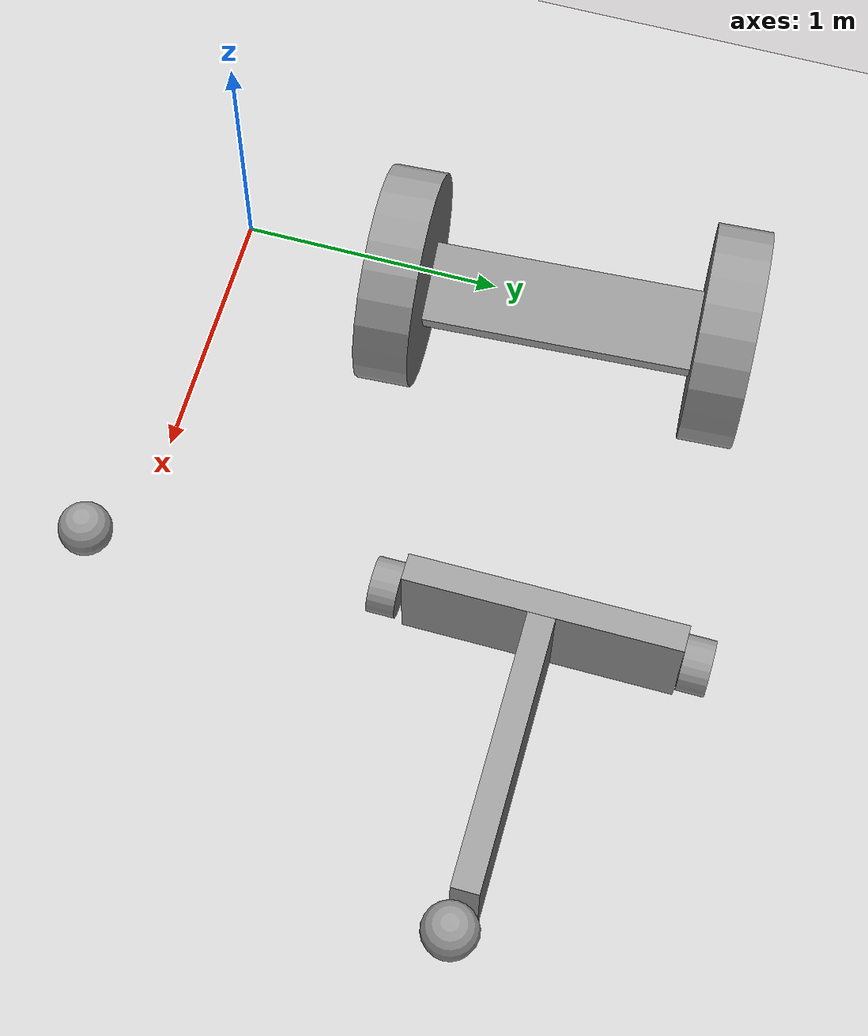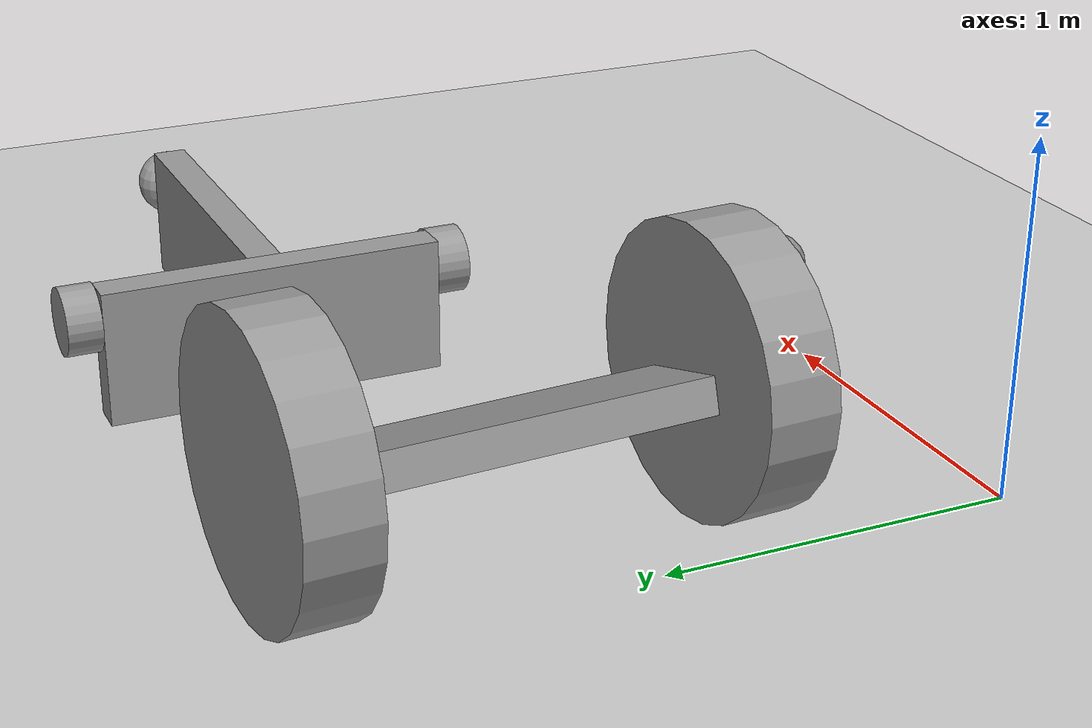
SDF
<sdf version="1.6">
 <world name="default">
  <model name="ground_plane">
   <static>1</static>
   <link name="link">
    <collision name="collision">
     <geometry><plane><normal>0 0 1</normal><size>100 100</size></plane></geometry>
     <surface>
      <contact><collide_bitmask>65535</collide_bitmask></contact>
      <friction><ode><mu>100</mu><mu2>50</mu2></ode></friction>
     </surface>
    </collision>
    <visual name="visual">
     <cast_shadows>0</cast_shadows>
     <geometry><plane><normal>0 0 1</normal><size>100 100</size></plane></geometry>
     <material>
      <script><uri>file://media/materials/scripts/gazebo.material</uri><name>Gazebo/Grey</name></script>
     </material>
    </visual>
   </link>
  </model>
  <model name="normal_follower">
   <link name="link">
    <inertial>
     <mass>1</mass>
     <inertia>
      <ixx>0.166667</ixx>
      <ixy>0</ixy>
      <ixz>0</ixz>
      <iyy>0.166667</iyy>
      <iyz>0</iyz>
      <izz>0.166667</izz>
     </inertia>
    </inertial>
    <visual name="visual">
     <geometry><box><size>0.1 1 0.3</size></box></geometry>
     <material>
      <script><name>Gazebo/Grey</name><uri>file://media/materials/scripts/gazebo.material</uri></script>
      <shader type="pixel"><normal_map>__default__</normal_map></shader>
      <ambient>0.3 0.3 0.3 1</ambient>
      <diffuse>0.7 0.7 0.7 1</diffuse>
      <specular>0.01 0.01 0.01 1</specular>
      <emissive>0 0 0 1</emissive>
     </material>
    </visual>
    <collision name="collision">
     <geometry><box><size>0.1 1 0.3</size></box></geometry>
     <surface>
      <friction>
       <ode><mu>1</mu><mu2>1</mu2><fdir1>0 0 0</fdir1><slip1>0</slip1><slip2>0</slip2></ode>
       <torsional>
        <coefficient>1</coefficient>
        <patch_radius>0</patch_radius>
        <surface_radius>0</surface_radius>
        <use_patch_radius>1</use_patch_radius>
        <ode><slip>0</slip></ode>
       </torsional>
      </friction>
      <bounce><restitution_coefficient>0</restitution_coefficient><threshold>1e+06</threshold></bounce>
      <contact>
       <collide_without_contact>0</collide_without_contact>
       <collide_without_contact_bitmask>1</collide_without_contact_bitmask>
       <collide_bitmask>1</collide_bitmask>
       <ode>
        <soft_cfm>0</soft_cfm>
        <soft_erp>0.2</soft_erp>
        <kp>1e+13</kp>
        <kd>1</kd>
        <max_vel>0.01</max_vel>
        <min_depth>0</min_depth>
       </ode>
       <bullet>
        <split_impulse>1</split_impulse>
        <split_impulse_penetration_threshold>-0.01</split_impulse_penetration_threshold>
        <soft_cfm>0</soft_cfm>
        <soft_erp>0.2</soft_erp>
        <kp>1e+13</kp>
        <kd>1</kd>
       </bullet>
      </contact>
     </surface>
    </collision>
   </link>
   <link name="link_0">
    <pose>0.045 0.6 0 1.5708 -0 3.14159</pose>
    <inertial>
     <mass>1</mass>
     <inertia><ixx>0.145833</ixx><ixy>0</ixy><ixz>0</ixz><iyy>0.145833</iyy><iyz>0</iyz><izz>0.125</izz></inertia>
    </inertial>
    <visual name="visual">
     <geometry><cylinder><radius>0.4</radius><length>0.2</length></cylinder></geometry>
     <material>
      <lighting>1</lighting>
      <script><uri>file://media/materials/scripts/gazebo.material</uri><name>Gazebo/Grey</name></script>
      <shader type="pixel"><normal_map>__default__</normal_map></shader>
      <ambient>0.3 0.3 0.3 1</ambient>
      <diffuse>0.7 0.7 0.7 1</diffuse>
      <specular>0.01 0.01 0.01 1</specular>
      <emissive>0 0 0 1</emissive>
     </material>
    </visual>
    <collision name="collision">
     <geometry><cylinder><radius>0.4</radius><length>0.2</length></cylinder></geometry>
     <surface>
      <friction>
       <ode><mu>1</mu><mu2>1</mu2><fdir1>0 0 0</fdir1><slip1>0</slip1><slip2>0</slip2></ode>
       <torsional>
        <coefficient>1</coefficient>
        <patch_radius>0</patch_radius>
        <surface_radius>0</surface_radius>
        <use_patch_radius>1</use_patch_radius>
        <ode><slip>0</slip></ode>
       </torsional>
      </friction>
      <bounce><restitution_coefficient>0</restitution_coefficient><threshold>1e+06</threshold></bounce>
      <contact>
       <collide_without_contact>0</collide_without_contact>
       <collide_without_contact_bitmask>1</collide_without_contact_bitmask>
       <collide_bitmask>1</collide_bitmask>
       <ode>
        <soft_cfm>0</soft_cfm>
        <soft_erp>0.2</soft_erp>
        <kp>1e+13</kp>
        <kd>1</kd>
        <max_vel>0.01</max_vel>
        <min_depth>0</min_depth>
       </ode>
       <bullet>
        <split_impulse>1</split_impulse>
        <split_impulse_penetration_threshold>-0.01</split_impulse_penetration_threshold>
        <soft_cfm>0</soft_cfm>
        <soft_erp>0.2</soft_erp>
        <kp>1e+13</kp>
        <kd>1</kd>
       </bullet>
      </contact>
     </surface>
    </collision>
   </link>
   <link name="link_0_clone">
    <pose>0.045 -0.6 0 1.5708 -0 -3.14159</pose>
    <inertial>
     <mass>1</mass>
     <inertia><ixx>0.145833</ixx><ixy>0</ixy><ixz>0</ixz><iyy>0.145833</iyy><iyz>0</iyz><izz>0.125</izz></inertia>
    </inertial>
    <visual name="visual">
     <geometry><cylinder><radius>0.4</radius><length>0.2</length></cylinder></geometry>
     <material>
      <lighting>1</lighting>
      <script><uri>file://media/materials/scripts/gazebo.material</uri><name>Gazebo/Grey</name></script>
      <shader type="pixel"><normal_map>__default__</normal_map></shader>
      <ambient>0.3 0.3 0.3 1</ambient>
      <diffuse>0.7 0.7 0.7 1</diffuse>
      <specular>0.01 0.01 0.01 1</specular>
      <emissive>0 0 0 1</emissive>
     </material>
    </visual>
    <collision name="collision">
     <geometry><cylinder><radius>0.4</radius><length>0.2</length></cylinder></geometry>
     <surface>
      <friction>
       <ode><mu>1</mu><mu2>1</mu2><fdir1>0 0 0</fdir1><slip1>0</slip1><slip2>0</slip2></ode>
       <torsional>
        <coefficient>1</coefficient>
        <patch_radius>0</patch_radius>
        <surface_radius>0</surface_radius>
        <use_patch_radius>1</use_patch_radius>
        <ode><slip>0</slip></ode>
       </torsional>
      </friction>
      <bounce><restitution_coefficient>0</restitution_coefficient><threshold>1e+06</threshold></bounce>
      <contact>
       <collide_without_contact>0</collide_without_contact>
       <collide_without_contact_bitmask>1</collide_without_contact_bitmask>
       <collide_bitmask>1</collide_bitmask>
       <ode>
        <soft_cfm>0</soft_cfm>
        <soft_erp>0.2</soft_erp>
        <kp>1e+13</kp>
        <kd>1</kd>
        <max_vel>0.01</max_vel>
        <min_depth>0</min_depth>
       </ode>
       <bullet>
        <split_impulse>1</split_impulse>
        <split_impulse_penetration_threshold>-0.01</split_impulse_penetration_threshold>
        <soft_cfm>0</soft_cfm>
        <soft_erp>0.2</soft_erp>
        <kp>1e+13</kp>
        <kd>1</kd>
       </bullet>
      </contact>
     </surface>
    </collision>
   </link>
   <joint name="link_JOINT_0" type="revolute">
    <parent>link</parent>
    <child>link_0</child>
    <axis>
     <xyz>0 0 1</xyz>
     <use_parent_model_frame>0</use_parent_model_frame>
     <limit>
      <lower>-1.79769e+308</lower>
      <upper>1.79769e+308</upper>
      <effort>-1</effort>
      <velocity>-1</velocity>
     </limit>
     <dynamics>
      <spring_reference>0</spring_reference>
      <spring_stiffness>0</spring_stiffness>
      <damping>0</damping>
      <friction>0</friction>
     </dynamics>
    </axis>
    <physics>
     <ode><limit><cfm>0</cfm><erp>0.2</erp></limit><suspension><cfm>0</cfm><erp>0.2</erp></suspension></ode>
    </physics>
   </joint>
   <joint name="link_JOINT_1" type="revolute">
    <parent>link</parent>
    <child>link_0_clone</child>
    <axis>
     <xyz>0 0 1</xyz>
     <use_parent_model_frame>0</use_parent_model_frame>
     <limit>
      <lower>-1.79769e+308</lower>
      <upper>1.79769e+308</upper>
      <effort>-1</effort>
      <velocity>-1</velocity>
     </limit>
     <dynamics>
      <spring_reference>0</spring_reference>
      <spring_stiffness>0</spring_stiffness>
      <damping>0</damping>
      <friction>0</friction>
     </dynamics>
    </axis>
    <physics>
     <ode><limit><cfm>0</cfm><erp>0.2</erp></limit><suspension><cfm>0</cfm><erp>0.2</erp></suspension></ode>
    </physics>
   </joint>
   <static>0</static>
   <pose>0.241444 1.3104 0.356984 3.14158 -1.27264 0.057705</pose>
  </model>
  <model name="weird_follower">
   <link name="link">
    <inertial>
     <mass>1</mass>
     <inertia>
      <ixx>0.166667</ixx>
      <ixy>0</ixy>
      <ixz>0</ixz>
      <iyy>0.166667</iyy>
      <iyz>0</iyz>
      <izz>0.166667</izz>
     </inertia>
    </inertial>
    <visual name="visual">
     <geometry><box><size>0.1 1 0.4</size></box></geometry>
     <material>
      <script><name>Gazebo/Grey</name><uri>file://media/materials/scripts/gazebo.material</uri></script>
      <shader type="pixel"><normal_map>__default__</normal_map></shader>
      <ambient>0.3 0.3 0.3 1</ambient>
      <diffuse>0.7 0.7 0.7 1</diffuse>
      <specular>0.01 0.01 0.01 1</specular>
      <emissive>0 0 0 1</emissive>
     </material>
    </visual>
    <collision name="collision">
     <geometry><box><size>0.1 1 0.4</size></box></geometry>
     <surface>
      <friction>
       <ode><mu>1</mu><mu2>1</mu2><fdir1>0 0 0</fdir1><slip1>0</slip1><slip2>0</slip2></ode>
       <torsional>
        <coefficient>1</coefficient>
        <patch_radius>0</patch_radius>
        <surface_radius>0</surface_radius>
        <use_patch_radius>1</use_patch_radius>
        <ode><slip>0</slip></ode>
       </torsional>
      </friction>
      <bounce><restitution_coefficient>0</restitution_coefficient><threshold>1e+06</threshold></bounce>
      <contact>
       <collide_without_contact>0</collide_without_contact>
       <collide_without_contact_bitmask>1</collide_without_contact_bitmask>
       <collide_bitmask>1</collide_bitmask>
       <ode>
        <soft_cfm>0</soft_cfm>
        <soft_erp>0.2</soft_erp>
        <kp>1e+13</kp>
        <kd>1</kd>
        <max_vel>0.01</max_vel>
        <min_depth>0</min_depth>
       </ode>
       <bullet>
        <split_impulse>1</split_impulse>
        <split_impulse_penetration_threshold>-0.01</split_impulse_penetration_threshold>
        <soft_cfm>0</soft_cfm>
        <soft_erp>0.2</soft_erp>
        <kp>1e+13</kp>
        <kd>1</kd>
       </bullet>
      </contact>
     </surface>
    </collision>
   </link>
   <link name="link_0">
    <pose>0.045 0.55001 0.099995 1.5707 -0 0</pose>
    <inertial>
     <mass>1</mass>
     <inertia><ixx>0.145833</ixx><ixy>0</ixy><ixz>0</ixz><iyy>0.145833</iyy><iyz>0</iyz><izz>0.125</izz></inertia>
    </inertial>
    <visual name="visual">
     <geometry><cylinder><radius>0.1</radius><length>0.1</length></cylinder></geometry>
     <material>
      <lighting>1</lighting>
      <script><uri>file://media/materials/scripts/gazebo.material</uri><name>Gazebo/Grey</name></script>
      <shader type="pixel"><normal_map>__default__</normal_map></shader>
      <ambient>0.3 0.3 0.3 1</ambient>
      <diffuse>0.7 0.7 0.7 1</diffuse>
      <specular>0.01 0.01 0.01 1</specular>
      <emissive>0 0 0 1</emissive>
     </material>
    </visual>
    <collision name="collision">
     <geometry><cylinder><radius>0.1</radius><length>0.1</length></cylinder></geometry>
     <surface>
      <friction>
       <ode><mu>1</mu><mu2>1</mu2><fdir1>0 0 0</fdir1><slip1>0</slip1><slip2>0</slip2></ode>
       <torsional>
        <coefficient>1</coefficient>
        <patch_radius>0</patch_radius>
        <surface_radius>0</surface_radius>
        <use_patch_radius>1</use_patch_radius>
        <ode><slip>0</slip></ode>
       </torsional>
      </friction>
      <bounce><restitution_coefficient>0</restitution_coefficient><threshold>1e+06</threshold></bounce>
      <contact>
       <collide_without_contact>0</collide_without_contact>
       <collide_without_contact_bitmask>1</collide_without_contact_bitmask>
       <collide_bitmask>1</collide_bitmask>
       <ode>
        <soft_cfm>0</soft_cfm>
        <soft_erp>0.2</soft_erp>
        <kp>1e+13</kp>
        <kd>1</kd>
        <max_vel>0.01</max_vel>
        <min_depth>0</min_depth>
       </ode>
       <bullet>
        <split_impulse>1</split_impulse>
        <split_impulse_penetration_threshold>-0.01</split_impulse_penetration_threshold>
        <soft_cfm>0</soft_cfm>
        <soft_erp>0.2</soft_erp>
        <kp>1e+13</kp>
        <kd>1</kd>
       </bullet>
      </contact>
     </surface>
    </collision>
   </link>
   <link name="link_0_clone">
    <pose>0.05 -0.55001 0.099995 1.5707 -0 0</pose>
    <inertial>
     <mass>1</mass>
     <inertia><ixx>0.145833</ixx><ixy>0</ixy><ixz>0</ixz><iyy>0.145833</iyy><iyz>0</iyz><izz>0.125</izz></inertia>
    </inertial>
    <visual name="visual">
     <geometry><cylinder><radius>0.1</radius><length>0.1</length></cylinder></geometry>
     <material>
      <lighting>1</lighting>
      <script><uri>file://media/materials/scripts/gazebo.material</uri><name>Gazebo/Grey</name></script>
      <shader type="pixel"><normal_map>__default__</normal_map></shader>
      <ambient>0.3 0.3 0.3 1</ambient>
      <diffuse>0.7 0.7 0.7 1</diffuse>
      <specular>0.01 0.01 0.01 1</specular>
      <emissive>0 0 0 1</emissive>
     </material>
    </visual>
    <collision name="collision">
     <geometry><cylinder><radius>0.1</radius><length>0.1</length></cylinder></geometry>
     <surface>
      <friction>
       <ode><mu>1</mu><mu2>1</mu2><fdir1>0 0 0</fdir1><slip1>0</slip1><slip2>0</slip2></ode>
       <torsional>
        <coefficient>1</coefficient>
        <patch_radius>0</patch_radius>
        <surface_radius>0</surface_radius>
        <use_patch_radius>1</use_patch_radius>
        <ode><slip>0</slip></ode>
       </torsional>
      </friction>
      <bounce><restitution_coefficient>0</restitution_coefficient><threshold>1e+06</threshold></bounce>
      <contact>
       <collide_without_contact>0</collide_without_contact>
       <collide_without_contact_bitmask>1</collide_without_contact_bitmask>
       <collide_bitmask>1</collide_bitmask>
       <ode>
        <soft_cfm>0</soft_cfm>
        <soft_erp>0.2</soft_erp>
        <kp>1e+13</kp>
        <kd>1</kd>
        <max_vel>0.01</max_vel>
        <min_depth>0</min_depth>
       </ode>
       <bullet>
        <split_impulse>1</split_impulse>
        <split_impulse_penetration_threshold>-0.01</split_impulse_penetration_threshold>
        <soft_cfm>0</soft_cfm>
        <soft_erp>0.2</soft_erp>
        <kp>1e+13</kp>
        <kd>1</kd>
       </bullet>
      </contact>
     </surface>
    </collision>
   </link>
   <link name="link_1">
    <pose>1.15 -0.02 0.06 0 -0 0</pose>
    <inertial>
     <mass>1</mass>
     <inertia><ixx>0.1</ixx><ixy>0</ixy><ixz>0</ixz><iyy>0.1</iyy><iyz>0</iyz><izz>0.1</izz></inertia>
    </inertial>
    <visual name="visual">
     <geometry><sphere><radius>0.1</radius></sphere></geometry>
     <material>
      <lighting>1</lighting>
      <script><uri>file://media/materials/scripts/gazebo.material</uri><name>Gazebo/Grey</name></script>
      <shader type="pixel"><normal_map>__default__</normal_map></shader>
      <ambient>0.3 0.3 0.3 1</ambient>
      <diffuse>0.7 0.7 0.7 1</diffuse>
      <specular>0.01 0.01 0.01 1</specular>
      <emissive>0 0 0 1</emissive>
     </material>
    </visual>
    <collision name="collision">
     <geometry><sphere><radius>0.1</radius></sphere></geometry>
     <surface>
      <friction>
       <ode><mu>1</mu><mu2>1</mu2><fdir1>0 0 0</fdir1><slip1>0</slip1><slip2>0</slip2></ode>
       <torsional>
        <coefficient>1</coefficient>
        <patch_radius>0</patch_radius>
        <surface_radius>0</surface_radius>
        <use_patch_radius>1</use_patch_radius>
        <ode><slip>0</slip></ode>
       </torsional>
      </friction>
      <bounce><restitution_coefficient>0</restitution_coefficient><threshold>1e+06</threshold></bounce>
      <contact>
       <collide_without_contact>0</collide_without_contact>
       <collide_without_contact_bitmask>1</collide_without_contact_bitmask>
       <collide_bitmask>1</collide_bitmask>
       <ode>
        <soft_cfm>0</soft_cfm>
        <soft_erp>0.2</soft_erp>
        <kp>1e+13</kp>
        <kd>1</kd>
        <max_vel>0.01</max_vel>
        <min_depth>0</min_depth>
       </ode>
       <bullet>
        <split_impulse>1</split_impulse>
        <split_impulse_penetration_threshold>-0.01</split_impulse_penetration_threshold>
        <soft_cfm>0</soft_cfm>
        <soft_erp>0.2</soft_erp>
        <kp>1e+13</kp>
        <kd>1</kd>
       </bullet>
      </contact>
     </surface>
    </collision>
   </link>
   <link name="link_clone">
    <pose>0.55 0 0 0 0 -1.5708</pose>
    <inertial>
     <mass>1</mass>
     <inertia>
      <ixx>0.166667</ixx>
      <ixy>0</ixy>
      <ixz>0</ixz>
      <iyy>0.166667</iyy>
      <iyz>0</iyz>
      <izz>0.166667</izz>
     </inertia>
    </inertial>
    <visual name="visual">
     <geometry><box><size>0.1 1 0.4</size></box></geometry>
     <material>
      <script><name>Gazebo/Grey</name><uri>file://media/materials/scripts/gazebo.material</uri></script>
      <shader type="pixel"><normal_map>__default__</normal_map></shader>
      <ambient>0.3 0.3 0.3 1</ambient>
      <diffuse>0.7 0.7 0.7 1</diffuse>
      <specular>0.01 0.01 0.01 1</specular>
      <emissive>0 0 0 1</emissive>
     </material>
    </visual>
    <collision name="collision">
     <geometry><box><size>0.1 1 0.4</size></box></geometry>
     <surface>
      <friction>
       <ode><mu>1</mu><mu2>1</mu2><fdir1>0 0 0</fdir1><slip1>0</slip1><slip2>0</slip2></ode>
       <torsional>
        <coefficient>1</coefficient>
        <patch_radius>0</patch_radius>
        <surface_radius>0</surface_radius>
        <use_patch_radius>1</use_patch_radius>
        <ode><slip>0</slip></ode>
       </torsional>
      </friction>
      <bounce><restitution_coefficient>0</restitution_coefficient><threshold>1e+06</threshold></bounce>
      <contact>
       <collide_without_contact>0</collide_without_contact>
       <collide_without_contact_bitmask>1</collide_without_contact_bitmask>
       <collide_bitmask>1</collide_bitmask>
       <ode>
        <soft_cfm>0</soft_cfm>
        <soft_erp>0.2</soft_erp>
        <kp>1e+13</kp>
        <kd>1</kd>
        <max_vel>0.01</max_vel>
        <min_depth>0</min_depth>
       </ode>
       <bullet>
        <split_impulse>1</split_impulse>
        <split_impulse_penetration_threshold>-0.01</split_impulse_penetration_threshold>
        <soft_cfm>0</soft_cfm>
        <soft_erp>0.2</soft_erp>
        <kp>1e+13</kp>
        <kd>1</kd>
       </bullet>
      </contact>
     </surface>
    </collision>
   </link>
   <joint name="link_1_JOINT_9" type="ball">
    <parent>link_1</parent>
    <child>link_clone</child>
    <physics>
     <ode><limit><cfm>0</cfm><erp>0.2</erp></limit><suspension><cfm>0</cfm><erp>0.2</erp></suspension></ode>
    </physics>
   </joint>
   <joint name="link_JOINT_5" type="fixed">
    <parent>link</parent>
    <child>link_clone</child>
    <physics>
     <ode><limit><cfm>0</cfm><erp>0.2</erp></limit><suspension><cfm>0</cfm><erp>0.2</erp></suspension></ode>
    </physics>
   </joint>
   <joint name="link_JOINT_6" type="revolute">
    <parent>link</parent>
    <child>link_0</child>
    <axis>
     <xyz>0 0 1</xyz>
     <use_parent_model_frame>0</use_parent_model_frame>
     <limit>
      <lower>-1.79769e+308</lower>
      <upper>1.79769e+308</upper>
      <effort>-1</effort>
      <velocity>-1</velocity>
     </limit>
     <dynamics>
      <spring_reference>0</spring_reference>
      <spring_stiffness>0</spring_stiffness>
      <damping>0</damping>
     </dynamics>
    </axis>
    <physics>
     <ode><limit><cfm>0</cfm><erp>0.2</erp></limit><suspension><cfm>0</cfm><erp>0.2</erp></suspension></ode>
    </physics>
   </joint>
   <joint name="link_JOINT_7" type="revolute">
    <parent>link</parent>
    <child>link_0_clone</child>
    <axis>
     <xyz>0 0 1</xyz>
     <use_parent_model_frame>0</use_parent_model_frame>
     <limit>
      <lower>-1.79769e+308</lower>
      <upper>1.79769e+308</upper>
      <effort>-1</effort>
      <velocity>-1</velocity>
     </limit>
     <dynamics>
      <spring_reference>0</spring_reference>
      <spring_stiffness>0</spring_stiffness>
      <damping>0</damping>
     </dynamics>
    </axis>
    <physics>
     <ode><limit><cfm>0</cfm><erp>0.2</erp></limit><suspension><cfm>0</cfm><erp>0.2</erp></suspension></ode>
    </physics>
   </joint>
   <static>0</static>
   <pose>1.42162 1.54051 0.199996 -9e-06 -7e-06 0.000138</pose>
  </model>
  <model name="unit_sphere">
   <link name="link">
    <inertial>
     <mass>1</mass>
     <inertia><ixx>0.1</ixx><ixy>0</ixy><ixz>0</ixz><iyy>0.1</iyy><iyz>0</iyz><izz>0.1</izz></inertia>
    </inertial>
    <visual name="visual">
     <geometry><sphere><radius>0.1</radius></sphere></geometry>
     <material>
      <script><name>Gazebo/Grey</name><uri>file://media/materials/scripts/gazebo.material</uri></script>
      <shader type="pixel"><normal_map>__default__</normal_map></shader>
      <ambient>1 1 1 1</ambient>
      <diffuse>1 1 1 1</diffuse>
      <specular>1 1 1 1</specular>
      <emissive>1 1 1 1</emissive>
     </material>
    </visual>
    <collision name="collision">
     <geometry><sphere><radius>0.1</radius></sphere></geometry>
     <surface>
      <friction>
       <ode><mu>1</mu><mu2>1</mu2><fdir1>0 0 0</fdir1><slip1>0</slip1><slip2>0</slip2></ode>
       <torsional>
        <coefficient>1</coefficient>
        <patch_radius>0</patch_radius>
        <surface_radius>0</surface_radius>
        <use_patch_radius>1</use_patch_radius>
        <ode><slip>0</slip></ode>
       </torsional>
      </friction>
      <bounce><restitution_coefficient>0</restitution_coefficient><threshold>1e+06</threshold></bounce>
      <contact>
       <collide_without_contact>0</collide_without_contact>
       <collide_without_contact_bitmask>1</collide_without_contact_bitmask>
       <collide_bitmask>1</collide_bitmask>
       <ode>
        <soft_cfm>0</soft_cfm>
        <soft_erp>0.2</soft_erp>
        <kp>1e+13</kp>
        <kd>1</kd>
        <max_vel>0.01</max_vel>
        <min_depth>0</min_depth>
       </ode>
       <bullet>
        <split_impulse>1</split_impulse>
        <split_impulse_penetration_threshold>-0.01</split_impulse_penetration_threshold>
        <soft_cfm>0</soft_cfm>
        <soft_erp>0.2</soft_erp>
        <kp>1e+13</kp>
        <kd>1</kd>
       </bullet>
      </contact>
     </surface>
    </collision>
   </link>
   <static>0</static>
   <pose>1.46165 -0.159671 0.1 0 -0 0</pose>
  </model>
 </world>
</sdf>
